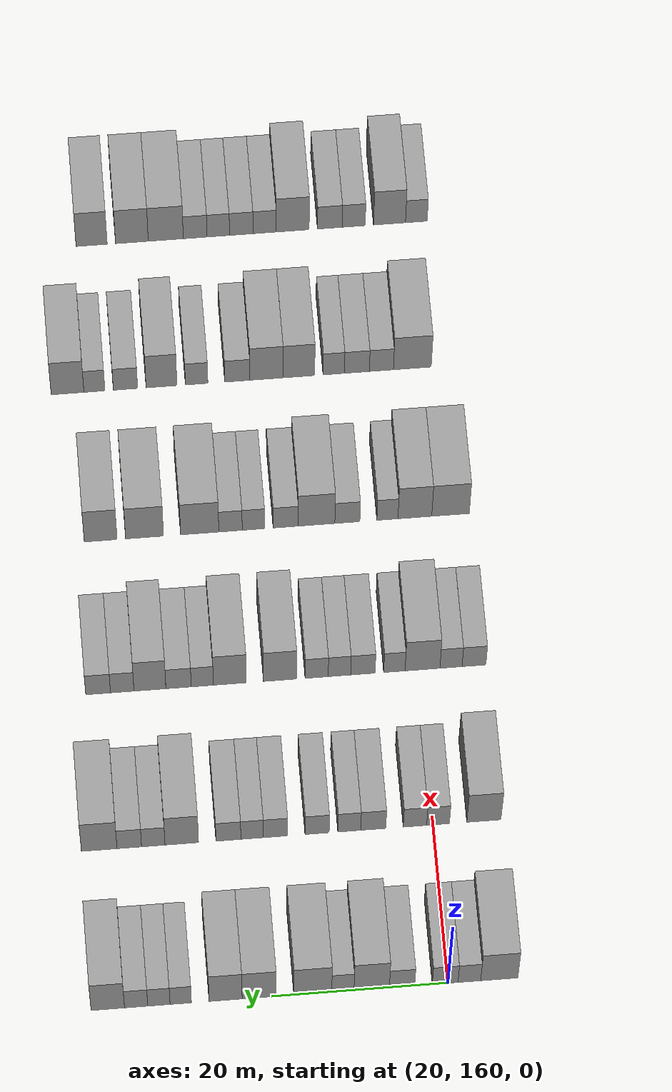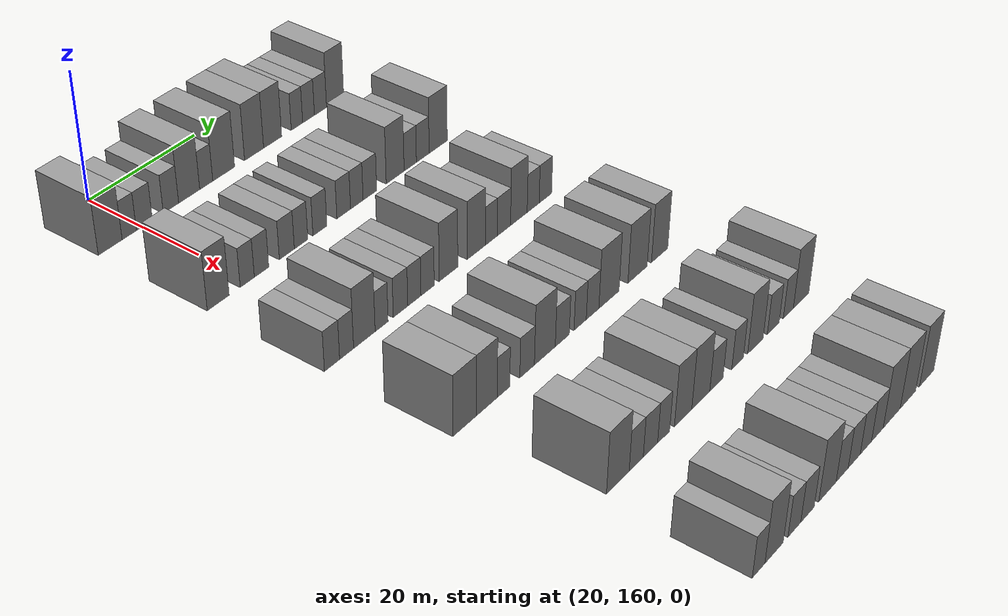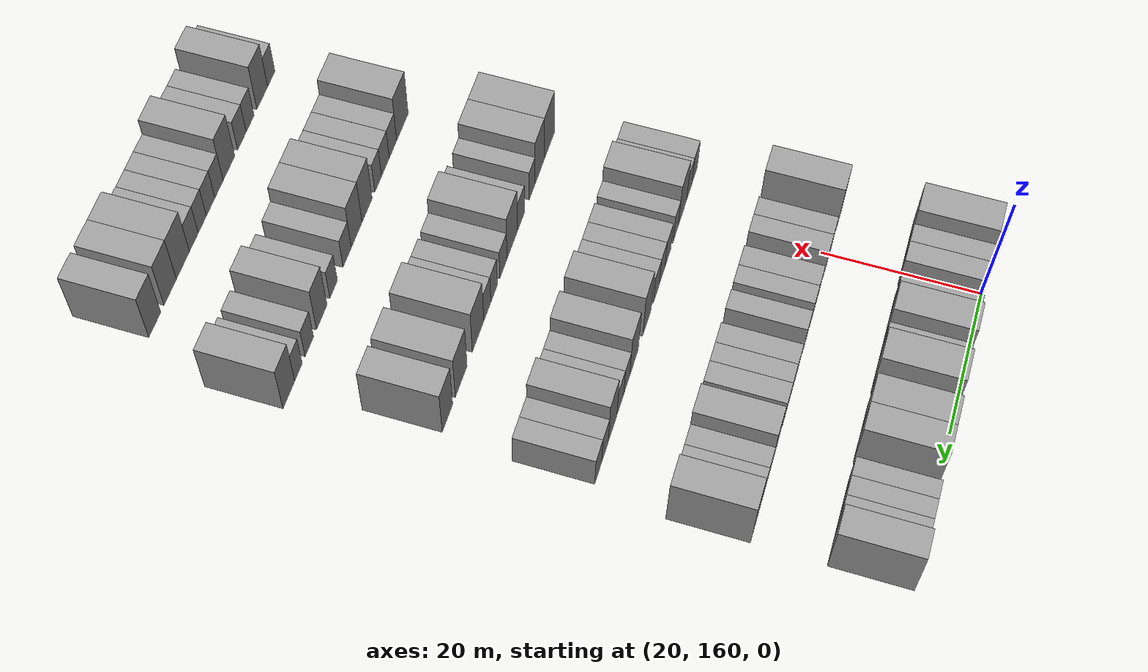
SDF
<sdf version="1.6">
 <world name="default">
  <model name="building_129">
   <static>1</static>
   <pose>25.0000 154.2460 0 0.000000 0.000000 0.000000</pose>
   <link name="link">
    <pose>0 0 4.50 0 0 0</pose>
    <collision name="collision"><geometry><box><size>10.0000 4.2170 9.0000</size></box></geometry></collision>
    <visual name="visual">
     <cast_shadows>0</cast_shadows>
     <geometry><box><size>10.0000 4.2170 9.0000</size></box></geometry>
     <material>
      <script>
       <uri>model://grey_wall/materials/scripts</uri>
       <uri>model://grey_wall/materials/textures</uri>
       <name>vrc/grey_wall</name>
      </script>
     </material>
    </visual>
   </link>
  </model>
  <model name="building_130">
   <static>1</static>
   <pose>25.0000 157.6413 0 0.000000 0.000000 0.000000</pose>
   <link name="link">
    <pose>0 0 3.00 0 0 0</pose>
    <collision name="collision"><geometry><box><size>10.0000 2.5736 6.0000</size></box></geometry></collision>
    <visual name="visual">
     <cast_shadows>0</cast_shadows>
     <geometry><box><size>10.0000 2.5736 6.0000</size></box></geometry>
     <material>
      <script>
       <uri>model://grey_wall/materials/scripts</uri>
       <uri>model://grey_wall/materials/textures</uri>
       <name>vrc/grey_wall</name>
      </script>
     </material>
    </visual>
   </link>
  </model>
  <model name="building_131">
   <static>1</static>
   <pose>25.0000 160.3849 0 0.000000 0.000000 0.000000</pose>
   <link name="link">
    <pose>0 0 3.00 0 0 0</pose>
    <collision name="collision"><geometry><box><size>10.0000 2.9136 6.0000</size></box></geometry></collision>
    <visual name="visual">
     <cast_shadows>0</cast_shadows>
     <geometry><box><size>10.0000 2.9136 6.0000</size></box></geometry>
     <material>
      <script>
       <uri>model://grey_wall/materials/scripts</uri>
       <uri>model://grey_wall/materials/textures</uri>
       <name>vrc/grey_wall</name>
      </script>
     </material>
    </visual>
   </link>
  </model>
  <model name="building_132">
   <static>1</static>
   <pose>25.0000 165.2762 0 0.000000 0.000000 0.000000</pose>
   <link name="link">
    <pose>0 0 3.00 0 0 0</pose>
    <collision name="collision"><geometry><box><size>10.0000 2.8690 6.0000</size></box></geometry></collision>
    <visual name="visual">
     <cast_shadows>0</cast_shadows>
     <geometry><box><size>10.0000 2.8690 6.0000</size></box></geometry>
     <material>
      <script>
       <uri>model://grey_wall/materials/scripts</uri>
       <uri>model://grey_wall/materials/textures</uri>
       <name>vrc/grey_wall</name>
      </script>
     </material>
    </visual>
   </link>
  </model>
  <model name="building_133">
   <static>1</static>
   <pose>25.0000 168.7164 0 0.000000 0.000000 0.000000</pose>
   <link name="link">
    <pose>0 0 4.50 0 0 0</pose>
    <collision name="collision"><geometry><box><size>10.0000 4.0114 9.0000</size></box></geometry></collision>
    <visual name="visual">
     <cast_shadows>0</cast_shadows>
     <geometry><box><size>10.0000 4.0114 9.0000</size></box></geometry>
     <material>
      <script>
       <uri>model://grey_wall/materials/scripts</uri>
       <uri>model://grey_wall/materials/textures</uri>
       <name>vrc/grey_wall</name>
      </script>
     </material>
    </visual>
   </link>
  </model>
  <model name="building_134">
   <static>1</static>
   <pose>25.0000 171.9844 0 0.000000 0.000000 0.000000</pose>
   <link name="link">
    <pose>0 0 3.00 0 0 0</pose>
    <collision name="collision"><geometry><box><size>10.0000 2.5245 6.0000</size></box></geometry></collision>
    <visual name="visual">
     <cast_shadows>0</cast_shadows>
     <geometry><box><size>10.0000 2.5245 6.0000</size></box></geometry>
     <material>
      <script>
       <uri>model://grey_wall/materials/scripts</uri>
       <uri>model://grey_wall/materials/textures</uri>
       <name>vrc/grey_wall</name>
      </script>
     </material>
    </visual>
   </link>
  </model>
  <model name="building_135">
   <static>1</static>
   <pose>25.0000 175.3926 0 0.000000 0.000000 0.000000</pose>
   <link name="link">
    <pose>0 0 4.50 0 0 0</pose>
    <collision name="collision"><geometry><box><size>10.0000 4.2920 9.0000</size></box></geometry></collision>
    <visual name="visual">
     <cast_shadows>0</cast_shadows>
     <geometry><box><size>10.0000 4.2920 9.0000</size></box></geometry>
     <material>
      <script>
       <uri>model://grey_wall/materials/scripts</uri>
       <uri>model://grey_wall/materials/textures</uri>
       <name>vrc/grey_wall</name>
      </script>
     </material>
    </visual>
   </link>
  </model>
  <model name="building_136">
   <static>1</static>
   <pose>25.0000 181.4640 0 0.000000 0.000000 0.000000</pose>
   <link name="link">
    <pose>0 0 4.50 0 0 0</pose>
    <collision name="collision"><geometry><box><size>10.0000 3.8508 9.0000</size></box></geometry></collision>
    <visual name="visual">
     <cast_shadows>0</cast_shadows>
     <geometry><box><size>10.0000 3.8508 9.0000</size></box></geometry>
     <material>
      <script>
       <uri>model://grey_wall/materials/scripts</uri>
       <uri>model://grey_wall/materials/textures</uri>
       <name>vrc/grey_wall</name>
      </script>
     </material>
    </visual>
   </link>
  </model>
  <model name="building_137">
   <static>1</static>
   <pose>25.0000 185.2584 0 0.000000 0.000000 0.000000</pose>
   <link name="link">
    <pose>0 0 4.50 0 0 0</pose>
    <collision name="collision"><geometry><box><size>10.0000 3.7382 9.0000</size></box></geometry></collision>
    <visual name="visual">
     <cast_shadows>0</cast_shadows>
     <geometry><box><size>10.0000 3.7382 9.0000</size></box></geometry>
     <material>
      <script>
       <uri>model://grey_wall/materials/scripts</uri>
       <uri>model://grey_wall/materials/textures</uri>
       <name>vrc/grey_wall</name>
      </script>
     </material>
    </visual>
   </link>
  </model>
  <model name="building_138">
   <static>1</static>
   <pose>25.0000 190.3357 0 0.000000 0.000000 0.000000</pose>
   <link name="link">
    <pose>0 0 3.00 0 0 0</pose>
    <collision name="collision"><geometry><box><size>10.0000 2.4163 6.0000</size></box></geometry></collision>
    <visual name="visual">
     <cast_shadows>0</cast_shadows>
     <geometry><box><size>10.0000 2.4163 6.0000</size></box></geometry>
     <material>
      <script>
       <uri>model://grey_wall/materials/scripts</uri>
       <uri>model://grey_wall/materials/textures</uri>
       <name>vrc/grey_wall</name>
      </script>
     </material>
    </visual>
   </link>
  </model>
  <model name="building_139">
   <static>1</static>
   <pose>25.0000 192.8050 0 0.000000 0.000000 0.000000</pose>
   <link name="link">
    <pose>0 0 3.00 0 0 0</pose>
    <collision name="collision"><geometry><box><size>10.0000 2.5221 6.0000</size></box></geometry></collision>
    <visual name="visual">
     <cast_shadows>0</cast_shadows>
     <geometry><box><size>10.0000 2.5221 6.0000</size></box></geometry>
     <material>
      <script>
       <uri>model://grey_wall/materials/scripts</uri>
       <uri>model://grey_wall/materials/textures</uri>
       <name>vrc/grey_wall</name>
      </script>
     </material>
    </visual>
   </link>
  </model>
  <model name="building_140">
   <static>1</static>
   <pose>25.0000 195.3795 0 0.000000 0.000000 0.000000</pose>
   <link name="link">
    <pose>0 0 3.00 0 0 0</pose>
    <collision name="collision"><geometry><box><size>10.0000 2.6270 6.0000</size></box></geometry></collision>
    <visual name="visual">
     <cast_shadows>0</cast_shadows>
     <geometry><box><size>10.0000 2.6270 6.0000</size></box></geometry>
     <material>
      <script>
       <uri>model://grey_wall/materials/scripts</uri>
       <uri>model://grey_wall/materials/textures</uri>
       <name>vrc/grey_wall</name>
      </script>
     </material>
    </visual>
   </link>
  </model>
  <model name="building_141">
   <static>1</static>
   <pose>25.0000 198.5831 0 0.000000 0.000000 0.000000</pose>
   <link name="link">
    <pose>0 0 4.50 0 0 0</pose>
    <collision name="collision"><geometry><box><size>10.0000 3.7802 9.0000</size></box></geometry></collision>
    <visual name="visual">
     <cast_shadows>0</cast_shadows>
     <geometry><box><size>10.0000 3.7802 9.0000</size></box></geometry>
     <material>
      <script>
       <uri>model://grey_wall/materials/scripts</uri>
       <uri>model://grey_wall/materials/textures</uri>
       <name>vrc/grey_wall</name>
      </script>
     </material>
    </visual>
   </link>
  </model>
  <model name="building_305">
   <static>1</static>
   <pose>44.0000 154.2042 0 0.000000 0.000000 0.000000</pose>
   <link name="link">
    <pose>0 0 4.50 0 0 0</pose>
    <collision name="collision"><geometry><box><size>10.0000 3.9146 9.0000</size></box></geometry></collision>
    <visual name="visual">
     <cast_shadows>0</cast_shadows>
     <geometry><box><size>10.0000 3.9146 9.0000</size></box></geometry>
     <material>
      <script>
       <uri>model://grey_wall/materials/scripts</uri>
       <uri>model://grey_wall/materials/textures</uri>
       <name>vrc/grey_wall</name>
      </script>
     </material>
    </visual>
   </link>
  </model>
  <model name="building_306">
   <static>1</static>
   <pose>44.0000 159.4656 0 0.000000 0.000000 0.000000</pose>
   <link name="link">
    <pose>0 0 3.00 0 0 0</pose>
    <collision name="collision"><geometry><box><size>10.0000 2.6083 6.0000</size></box></geometry></collision>
    <visual name="visual">
     <cast_shadows>0</cast_shadows>
     <geometry><box><size>10.0000 2.6083 6.0000</size></box></geometry>
     <material>
      <script>
       <uri>model://grey_wall/materials/scripts</uri>
       <uri>model://grey_wall/materials/textures</uri>
       <name>vrc/grey_wall</name>
      </script>
     </material>
    </visual>
   </link>
  </model>
  <model name="building_307">
   <static>1</static>
   <pose>44.0000 162.1146 0 0.000000 0.000000 0.000000</pose>
   <link name="link">
    <pose>0 0 3.00 0 0 0</pose>
    <collision name="collision"><geometry><box><size>10.0000 2.6896 6.0000</size></box></geometry></collision>
    <visual name="visual">
     <cast_shadows>0</cast_shadows>
     <geometry><box><size>10.0000 2.6896 6.0000</size></box></geometry>
     <material>
      <script>
       <uri>model://grey_wall/materials/scripts</uri>
       <uri>model://grey_wall/materials/textures</uri>
       <name>vrc/grey_wall</name>
      </script>
     </material>
    </visual>
   </link>
  </model>
  <model name="building_308">
   <static>1</static>
   <pose>44.0000 166.8958 0 0.000000 0.000000 0.000000</pose>
   <link name="link">
    <pose>0 0 3.00 0 0 0</pose>
    <collision name="collision"><geometry><box><size>10.0000 2.8729 6.0000</size></box></geometry></collision>
    <visual name="visual">
     <cast_shadows>0</cast_shadows>
     <geometry><box><size>10.0000 2.8729 6.0000</size></box></geometry>
     <material>
      <script>
       <uri>model://grey_wall/materials/scripts</uri>
       <uri>model://grey_wall/materials/textures</uri>
       <name>vrc/grey_wall</name>
      </script>
     </material>
    </visual>
   </link>
  </model>
  <model name="building_309">
   <static>1</static>
   <pose>44.0000 169.6414 0 0.000000 0.000000 0.000000</pose>
   <link name="link">
    <pose>0 0 3.00 0 0 0</pose>
    <collision name="collision"><geometry><box><size>10.0000 2.6182 6.0000</size></box></geometry></collision>
    <visual name="visual">
     <cast_shadows>0</cast_shadows>
     <geometry><box><size>10.0000 2.6182 6.0000</size></box></geometry>
     <material>
      <script>
       <uri>model://grey_wall/materials/scripts</uri>
       <uri>model://grey_wall/materials/textures</uri>
       <name>vrc/grey_wall</name>
      </script>
     </material>
    </visual>
   </link>
  </model>
  <model name="building_310">
   <static>1</static>
   <pose>44.0000 173.3304 0 0.000000 0.000000 0.000000</pose>
   <link name="link">
    <pose>0 0 3.00 0 0 0</pose>
    <collision name="collision"><geometry><box><size>10.0000 2.7597 6.0000</size></box></geometry></collision>
    <visual name="visual">
     <cast_shadows>0</cast_shadows>
     <geometry><box><size>10.0000 2.7597 6.0000</size></box></geometry>
     <material>
      <script>
       <uri>model://grey_wall/materials/scripts</uri>
       <uri>model://grey_wall/materials/textures</uri>
       <name>vrc/grey_wall</name>
      </script>
     </material>
    </visual>
   </link>
  </model>
  <model name="building_311">
   <static>1</static>
   <pose>44.0000 178.0972 0 0.000000 0.000000 0.000000</pose>
   <link name="link">
    <pose>0 0 3.00 0 0 0</pose>
    <collision name="collision"><geometry><box><size>10.0000 2.7738 6.0000</size></box></geometry></collision>
    <visual name="visual">
     <cast_shadows>0</cast_shadows>
     <geometry><box><size>10.0000 2.7738 6.0000</size></box></geometry>
     <material>
      <script>
       <uri>model://grey_wall/materials/scripts</uri>
       <uri>model://grey_wall/materials/textures</uri>
       <name>vrc/grey_wall</name>
      </script>
     </material>
    </visual>
   </link>
  </model>
  <model name="building_312">
   <static>1</static>
   <pose>44.0000 180.7755 0 0.000000 0.000000 0.000000</pose>
   <link name="link">
    <pose>0 0 3.00 0 0 0</pose>
    <collision name="collision"><geometry><box><size>10.0000 2.5829 6.0000</size></box></geometry></collision>
    <visual name="visual">
     <cast_shadows>0</cast_shadows>
     <geometry><box><size>10.0000 2.5829 6.0000</size></box></geometry>
     <material>
      <script>
       <uri>model://grey_wall/materials/scripts</uri>
       <uri>model://grey_wall/materials/textures</uri>
       <name>vrc/grey_wall</name>
      </script>
     </material>
    </visual>
   </link>
  </model>
  <model name="building_313">
   <static>1</static>
   <pose>44.0000 183.4873 0 0.000000 0.000000 0.000000</pose>
   <link name="link">
    <pose>0 0 3.00 0 0 0</pose>
    <collision name="collision"><geometry><box><size>10.0000 2.8407 6.0000</size></box></geometry></collision>
    <visual name="visual">
     <cast_shadows>0</cast_shadows>
     <geometry><box><size>10.0000 2.8407 6.0000</size></box></geometry>
     <material>
      <script>
       <uri>model://grey_wall/materials/scripts</uri>
       <uri>model://grey_wall/materials/textures</uri>
       <name>vrc/grey_wall</name>
      </script>
     </material>
    </visual>
   </link>
  </model>
  <model name="building_314">
   <static>1</static>
   <pose>44.0000 188.8247 0 0.000000 0.000000 0.000000</pose>
   <link name="link">
    <pose>0 0 4.50 0 0 0</pose>
    <collision name="collision"><geometry><box><size>10.0000 3.8340 9.0000</size></box></geometry></collision>
    <visual name="visual">
     <cast_shadows>0</cast_shadows>
     <geometry><box><size>10.0000 3.8340 9.0000</size></box></geometry>
     <material>
      <script>
       <uri>model://grey_wall/materials/scripts</uri>
       <uri>model://grey_wall/materials/textures</uri>
       <name>vrc/grey_wall</name>
      </script>
     </material>
    </visual>
   </link>
  </model>
  <model name="building_315">
   <static>1</static>
   <pose>44.0000 192.0811 0 0.000000 0.000000 0.000000</pose>
   <link name="link">
    <pose>0 0 3.00 0 0 0</pose>
    <collision name="collision"><geometry><box><size>10.0000 2.6788 6.0000</size></box></geometry></collision>
    <visual name="visual">
     <cast_shadows>0</cast_shadows>
     <geometry><box><size>10.0000 2.6788 6.0000</size></box></geometry>
     <material>
      <script>
       <uri>model://grey_wall/materials/scripts</uri>
       <uri>model://grey_wall/materials/textures</uri>
       <name>vrc/grey_wall</name>
      </script>
     </material>
    </visual>
   </link>
  </model>
  <model name="building_316">
   <static>1</static>
   <pose>44.0000 194.8253 0 0.000000 0.000000 0.000000</pose>
   <link name="link">
    <pose>0 0 3.00 0 0 0</pose>
    <collision name="collision"><geometry><box><size>10.0000 2.8096 6.0000</size></box></geometry></collision>
    <visual name="visual">
     <cast_shadows>0</cast_shadows>
     <geometry><box><size>10.0000 2.8096 6.0000</size></box></geometry>
     <material>
      <script>
       <uri>model://grey_wall/materials/scripts</uri>
       <uri>model://grey_wall/materials/textures</uri>
       <name>vrc/grey_wall</name>
      </script>
     </material>
    </visual>
   </link>
  </model>
  <model name="building_317">
   <static>1</static>
   <pose>44.0000 198.2638 0 0.000000 0.000000 0.000000</pose>
   <link name="link">
    <pose>0 0 4.50 0 0 0</pose>
    <collision name="collision"><geometry><box><size>10.0000 4.0675 9.0000</size></box></geometry></collision>
    <visual name="visual">
     <cast_shadows>0</cast_shadows>
     <geometry><box><size>10.0000 4.0675 9.0000</size></box></geometry>
     <material>
      <script>
       <uri>model://grey_wall/materials/scripts</uri>
       <uri>model://grey_wall/materials/textures</uri>
       <name>vrc/grey_wall</name>
      </script>
     </material>
    </visual>
   </link>
  </model>
  <model name="building_474">
   <static>1</static>
   <pose>63.0000 153.5752 0 0.000000 0.000000 0.000000</pose>
   <link name="link">
    <pose>0 0 3.00 0 0 0</pose>
    <collision name="collision"><geometry><box><size>10.0000 2.7637 6.0000</size></box></geometry></collision>
    <visual name="visual">
     <cast_shadows>0</cast_shadows>
     <geometry><box><size>10.0000 2.7637 6.0000</size></box></geometry>
     <material>
      <script>
       <uri>model://grey_wall/materials/scripts</uri>
       <uri>model://grey_wall/materials/textures</uri>
       <name>vrc/grey_wall</name>
      </script>
     </material>
    </visual>
   </link>
  </model>
  <model name="building_475">
   <static>1</static>
   <pose>63.0000 156.2429 0 0.000000 0.000000 0.000000</pose>
   <link name="link">
    <pose>0 0 3.00 0 0 0</pose>
    <collision name="collision"><geometry><box><size>10.0000 2.5715 6.0000</size></box></geometry></collision>
    <visual name="visual">
     <cast_shadows>0</cast_shadows>
     <geometry><box><size>10.0000 2.5715 6.0000</size></box></geometry>
     <material>
      <script>
       <uri>model://grey_wall/materials/scripts</uri>
       <uri>model://grey_wall/materials/textures</uri>
       <name>vrc/grey_wall</name>
      </script>
     </material>
    </visual>
   </link>
  </model>
  <model name="building_476">
   <static>1</static>
   <pose>63.0000 159.5492 0 0.000000 0.000000 0.000000</pose>
   <link name="link">
    <pose>0 0 4.50 0 0 0</pose>
    <collision name="collision"><geometry><box><size>10.0000 4.0411 9.0000</size></box></geometry></collision>
    <visual name="visual">
     <cast_shadows>0</cast_shadows>
     <geometry><box><size>10.0000 4.0411 9.0000</size></box></geometry>
     <material>
      <script>
       <uri>model://grey_wall/materials/scripts</uri>
       <uri>model://grey_wall/materials/textures</uri>
       <name>vrc/grey_wall</name>
      </script>
     </material>
    </visual>
   </link>
  </model>
  <model name="building_477">
   <static>1</static>
   <pose>63.0000 162.8063 0 0.000000 0.000000 0.000000</pose>
   <link name="link">
    <pose>0 0 3.00 0 0 0</pose>
    <collision name="collision"><geometry><box><size>10.0000 2.4732 6.0000</size></box></geometry></collision>
    <visual name="visual">
     <cast_shadows>0</cast_shadows>
     <geometry><box><size>10.0000 2.4732 6.0000</size></box></geometry>
     <material>
      <script>
       <uri>model://grey_wall/materials/scripts</uri>
       <uri>model://grey_wall/materials/textures</uri>
       <name>vrc/grey_wall</name>
      </script>
     </material>
    </visual>
   </link>
  </model>
  <model name="building_478">
   <static>1</static>
   <pose>63.0000 166.4580 0 0.000000 0.000000 0.000000</pose>
   <link name="link">
    <pose>0 0 3.00 0 0 0</pose>
    <collision name="collision"><geometry><box><size>10.0000 2.8301 6.0000</size></box></geometry></collision>
    <visual name="visual">
     <cast_shadows>0</cast_shadows>
     <geometry><box><size>10.0000 2.8301 6.0000</size></box></geometry>
     <material>
      <script>
       <uri>model://grey_wall/materials/scripts</uri>
       <uri>model://grey_wall/materials/textures</uri>
       <name>vrc/grey_wall</name>
      </script>
     </material>
    </visual>
   </link>
  </model>
  <model name="building_479">
   <static>1</static>
   <pose>63.0000 169.1736 0 0.000000 0.000000 0.000000</pose>
   <link name="link">
    <pose>0 0 3.00 0 0 0</pose>
    <collision name="collision"><geometry><box><size>10.0000 2.6010 6.0000</size></box></geometry></collision>
    <visual name="visual">
     <cast_shadows>0</cast_shadows>
     <geometry><box><size>10.0000 2.6010 6.0000</size></box></geometry>
     <material>
      <script>
       <uri>model://grey_wall/materials/scripts</uri>
       <uri>model://grey_wall/materials/textures</uri>
       <name>vrc/grey_wall</name>
      </script>
     </material>
    </visual>
   </link>
  </model>
  <model name="building_480">
   <static>1</static>
   <pose>63.0000 171.8097 0 0.000000 0.000000 0.000000</pose>
   <link name="link">
    <pose>0 0 3.00 0 0 0</pose>
    <collision name="collision"><geometry><box><size>10.0000 2.6711 6.0000</size></box></geometry></collision>
    <visual name="visual">
     <cast_shadows>0</cast_shadows>
     <geometry><box><size>10.0000 2.6711 6.0000</size></box></geometry>
     <material>
      <script>
       <uri>model://grey_wall/materials/scripts</uri>
       <uri>model://grey_wall/materials/textures</uri>
       <name>vrc/grey_wall</name>
      </script>
     </material>
    </visual>
   </link>
  </model>
  <model name="building_481">
   <static>1</static>
   <pose>63.0000 176.0574 0 0.000000 0.000000 0.000000</pose>
   <link name="link">
    <pose>0 0 4.50 0 0 0</pose>
    <collision name="collision"><geometry><box><size>10.0000 3.8244 9.0000</size></box></geometry></collision>
    <visual name="visual">
     <cast_shadows>0</cast_shadows>
     <geometry><box><size>10.0000 3.8244 9.0000</size></box></geometry>
     <material>
      <script>
       <uri>model://grey_wall/materials/scripts</uri>
       <uri>model://grey_wall/materials/textures</uri>
       <name>vrc/grey_wall</name>
      </script>
     </material>
    </visual>
   </link>
  </model>
  <model name="building_482">
   <static>1</static>
   <pose>63.0000 181.8731 0 0.000000 0.000000 0.000000</pose>
   <link name="link">
    <pose>0 0 4.50 0 0 0</pose>
    <collision name="collision"><geometry><box><size>10.0000 3.8069 9.0000</size></box></geometry></collision>
    <visual name="visual">
     <cast_shadows>0</cast_shadows>
     <geometry><box><size>10.0000 3.8069 9.0000</size></box></geometry>
     <material>
      <script>
       <uri>model://grey_wall/materials/scripts</uri>
       <uri>model://grey_wall/materials/textures</uri>
       <name>vrc/grey_wall</name>
      </script>
     </material>
    </visual>
   </link>
  </model>
  <model name="building_483">
   <static>1</static>
   <pose>63.0000 185.0580 0 0.000000 0.000000 0.000000</pose>
   <link name="link">
    <pose>0 0 3.00 0 0 0</pose>
    <collision name="collision"><geometry><box><size>10.0000 2.5628 6.0000</size></box></geometry></collision>
    <visual name="visual">
     <cast_shadows>0</cast_shadows>
     <geometry><box><size>10.0000 2.5628 6.0000</size></box></geometry>
     <material>
      <script>
       <uri>model://grey_wall/materials/scripts</uri>
       <uri>model://grey_wall/materials/textures</uri>
       <name>vrc/grey_wall</name>
      </script>
     </material>
    </visual>
   </link>
  </model>
  <model name="building_484">
   <static>1</static>
   <pose>63.0000 187.8026 0 0.000000 0.000000 0.000000</pose>
   <link name="link">
    <pose>0 0 3.00 0 0 0</pose>
    <collision name="collision"><geometry><box><size>10.0000 2.9264 6.0000</size></box></geometry></collision>
    <visual name="visual">
     <cast_shadows>0</cast_shadows>
     <geometry><box><size>10.0000 2.9264 6.0000</size></box></geometry>
     <material>
      <script>
       <uri>model://grey_wall/materials/scripts</uri>
       <uri>model://grey_wall/materials/textures</uri>
       <name>vrc/grey_wall</name>
      </script>
     </material>
    </visual>
   </link>
  </model>
  <model name="building_485">
   <static>1</static>
   <pose>63.0000 191.1092 0 0.000000 0.000000 0.000000</pose>
   <link name="link">
    <pose>0 0 4.50 0 0 0</pose>
    <collision name="collision"><geometry><box><size>10.0000 3.6867 9.0000</size></box></geometry></collision>
    <visual name="visual">
     <cast_shadows>0</cast_shadows>
     <geometry><box><size>10.0000 3.6867 9.0000</size></box></geometry>
     <material>
      <script>
       <uri>model://grey_wall/materials/scripts</uri>
       <uri>model://grey_wall/materials/textures</uri>
       <name>vrc/grey_wall</name>
      </script>
     </material>
    </visual>
   </link>
  </model>
  <model name="building_486">
   <static>1</static>
   <pose>63.0000 194.3098 0 0.000000 0.000000 0.000000</pose>
   <link name="link">
    <pose>0 0 3.00 0 0 0</pose>
    <collision name="collision"><geometry><box><size>10.0000 2.7145 6.0000</size></box></geometry></collision>
    <visual name="visual">
     <cast_shadows>0</cast_shadows>
     <geometry><box><size>10.0000 2.7145 6.0000</size></box></geometry>
     <material>
      <script>
       <uri>model://grey_wall/materials/scripts</uri>
       <uri>model://grey_wall/materials/textures</uri>
       <name>vrc/grey_wall</name>
      </script>
     </material>
    </visual>
   </link>
  </model>
  <model name="building_487">
   <static>1</static>
   <pose>63.0000 197.0973 0 0.000000 0.000000 0.000000</pose>
   <link name="link">
    <pose>0 0 3.00 0 0 0</pose>
    <collision name="collision"><geometry><box><size>10.0000 2.8607 6.0000</size></box></geometry></collision>
    <visual name="visual">
     <cast_shadows>0</cast_shadows>
     <geometry><box><size>10.0000 2.8607 6.0000</size></box></geometry>
     <material>
      <script>
       <uri>model://grey_wall/materials/scripts</uri>
       <uri>model://grey_wall/materials/textures</uri>
       <name>vrc/grey_wall</name>
      </script>
     </material>
    </visual>
   </link>
  </model>
  <model name="building_652">
   <static>1</static>
   <pose>82.0000 154.5561 0 0.000000 0.000000 0.000000</pose>
   <link name="link">
    <pose>0 0 4.50 0 0 0</pose>
    <collision name="collision"><geometry><box><size>10.0000 4.3965 9.0000</size></box></geometry></collision>
    <visual name="visual">
     <cast_shadows>0</cast_shadows>
     <geometry><box><size>10.0000 4.3965 9.0000</size></box></geometry>
     <material>
      <script>
       <uri>model://grey_wall/materials/scripts</uri>
       <uri>model://grey_wall/materials/textures</uri>
       <name>vrc/grey_wall</name>
      </script>
     </material>
    </visual>
   </link>
  </model>
  <model name="building_653">
   <static>1</static>
   <pose>82.0000 158.7388 0 0.000000 0.000000 0.000000</pose>
   <link name="link">
    <pose>0 0 4.50 0 0 0</pose>
    <collision name="collision"><geometry><box><size>10.0000 3.9690 9.0000</size></box></geometry></collision>
    <visual name="visual">
     <cast_shadows>0</cast_shadows>
     <geometry><box><size>10.0000 3.9690 9.0000</size></box></geometry>
     <material>
      <script>
       <uri>model://grey_wall/materials/scripts</uri>
       <uri>model://grey_wall/materials/textures</uri>
       <name>vrc/grey_wall</name>
      </script>
     </material>
    </visual>
   </link>
  </model>
  <model name="building_654">
   <static>1</static>
   <pose>82.0000 161.9550 0 0.000000 0.000000 0.000000</pose>
   <link name="link">
    <pose>0 0 3.00 0 0 0</pose>
    <collision name="collision"><geometry><box><size>10.0000 2.4633 6.0000</size></box></geometry></collision>
    <visual name="visual">
     <cast_shadows>0</cast_shadows>
     <geometry><box><size>10.0000 2.4633 6.0000</size></box></geometry>
     <material>
      <script>
       <uri>model://grey_wall/materials/scripts</uri>
       <uri>model://grey_wall/materials/textures</uri>
       <name>vrc/grey_wall</name>
      </script>
     </material>
    </visual>
   </link>
  </model>
  <model name="building_655">
   <static>1</static>
   <pose>82.0000 166.6512 0 0.000000 0.000000 0.000000</pose>
   <link name="link">
    <pose>0 0 3.00 0 0 0</pose>
    <collision name="collision"><geometry><box><size>10.0000 2.9291 6.0000</size></box></geometry></collision>
    <visual name="visual">
     <cast_shadows>0</cast_shadows>
     <geometry><box><size>10.0000 2.9291 6.0000</size></box></geometry>
     <material>
      <script>
       <uri>model://grey_wall/materials/scripts</uri>
       <uri>model://grey_wall/materials/textures</uri>
       <name>vrc/grey_wall</name>
      </script>
     </material>
    </visual>
   </link>
  </model>
  <model name="building_656">
   <static>1</static>
   <pose>82.0000 170.2599 0 0.000000 0.000000 0.000000</pose>
   <link name="link">
    <pose>0 0 4.50 0 0 0</pose>
    <collision name="collision"><geometry><box><size>10.0000 4.2883 9.0000</size></box></geometry></collision>
    <visual name="visual">
     <cast_shadows>0</cast_shadows>
     <geometry><box><size>10.0000 4.2883 9.0000</size></box></geometry>
     <material>
      <script>
       <uri>model://grey_wall/materials/scripts</uri>
       <uri>model://grey_wall/materials/textures</uri>
       <name>vrc/grey_wall</name>
      </script>
     </material>
    </visual>
   </link>
  </model>
  <model name="building_657">
   <static>1</static>
   <pose>82.0000 173.8707 0 0.000000 0.000000 0.000000</pose>
   <link name="link">
    <pose>0 0 3.00 0 0 0</pose>
    <collision name="collision"><geometry><box><size>10.0000 2.9333 6.0000</size></box></geometry></collision>
    <visual name="visual">
     <cast_shadows>0</cast_shadows>
     <geometry><box><size>10.0000 2.9333 6.0000</size></box></geometry>
     <material>
      <script>
       <uri>model://grey_wall/materials/scripts</uri>
       <uri>model://grey_wall/materials/textures</uri>
       <name>vrc/grey_wall</name>
      </script>
     </material>
    </visual>
   </link>
  </model>
  <model name="building_658">
   <static>1</static>
   <pose>82.0000 177.6490 0 0.000000 0.000000 0.000000</pose>
   <link name="link">
    <pose>0 0 3.00 0 0 0</pose>
    <collision name="collision"><geometry><box><size>10.0000 2.6233 6.0000</size></box></geometry></collision>
    <visual name="visual">
     <cast_shadows>0</cast_shadows>
     <geometry><box><size>10.0000 2.6233 6.0000</size></box></geometry>
     <material>
      <script>
       <uri>model://grey_wall/materials/scripts</uri>
       <uri>model://grey_wall/materials/textures</uri>
       <name>vrc/grey_wall</name>
      </script>
     </material>
    </visual>
   </link>
  </model>
  <model name="building_659">
   <static>1</static>
   <pose>82.0000 180.3321 0 0.000000 0.000000 0.000000</pose>
   <link name="link">
    <pose>0 0 3.00 0 0 0</pose>
    <collision name="collision"><geometry><box><size>10.0000 2.7430 6.0000</size></box></geometry></collision>
    <visual name="visual">
     <cast_shadows>0</cast_shadows>
     <geometry><box><size>10.0000 2.7430 6.0000</size></box></geometry>
     <material>
      <script>
       <uri>model://grey_wall/materials/scripts</uri>
       <uri>model://grey_wall/materials/textures</uri>
       <name>vrc/grey_wall</name>
      </script>
     </material>
    </visual>
   </link>
  </model>
  <model name="building_660">
   <static>1</static>
   <pose>82.0000 183.9355 0 0.000000 0.000000 0.000000</pose>
   <link name="link">
    <pose>0 0 4.50 0 0 0</pose>
    <collision name="collision"><geometry><box><size>10.0000 4.4637 9.0000</size></box></geometry></collision>
    <visual name="visual">
     <cast_shadows>0</cast_shadows>
     <geometry><box><size>10.0000 4.4637 9.0000</size></box></geometry>
     <material>
      <script>
       <uri>model://grey_wall/materials/scripts</uri>
       <uri>model://grey_wall/materials/textures</uri>
       <name>vrc/grey_wall</name>
      </script>
     </material>
    </visual>
   </link>
  </model>
  <model name="building_661">
   <static>1</static>
   <pose>82.0000 190.3796 0 0.000000 0.000000 0.000000</pose>
   <link name="link">
    <pose>0 0 4.50 0 0 0</pose>
    <collision name="collision"><geometry><box><size>10.0000 4.4247 9.0000</size></box></geometry></collision>
    <visual name="visual">
     <cast_shadows>0</cast_shadows>
     <geometry><box><size>10.0000 4.4247 9.0000</size></box></geometry>
     <material>
      <script>
       <uri>model://grey_wall/materials/scripts</uri>
       <uri>model://grey_wall/materials/textures</uri>
       <name>vrc/grey_wall</name>
      </script>
     </material>
    </visual>
   </link>
  </model>
  <model name="building_662">
   <static>1</static>
   <pose>82.0000 195.5095 0 0.000000 0.000000 0.000000</pose>
   <link name="link">
    <pose>0 0 4.50 0 0 0</pose>
    <collision name="collision"><geometry><box><size>10.0000 3.8349 9.0000</size></box></geometry></collision>
    <visual name="visual">
     <cast_shadows>0</cast_shadows>
     <geometry><box><size>10.0000 3.8349 9.0000</size></box></geometry>
     <material>
      <script>
       <uri>model://grey_wall/materials/scripts</uri>
       <uri>model://grey_wall/materials/textures</uri>
       <name>vrc/grey_wall</name>
      </script>
     </material>
    </visual>
   </link>
  </model>
  <model name="building_828">
   <static>1</static>
   <pose>101.0000 157.3459 0 0.000000 0.000000 0.000000</pose>
   <link name="link">
    <pose>0 0 4.50 0 0 0</pose>
    <collision name="collision"><geometry><box><size>10.0000 4.4759 9.0000</size></box></geometry></collision>
    <visual name="visual">
     <cast_shadows>0</cast_shadows>
     <geometry><box><size>10.0000 4.4759 9.0000</size></box></geometry>
     <material>
      <script>
       <uri>model://grey_wall/materials/scripts</uri>
       <uri>model://grey_wall/materials/textures</uri>
       <name>vrc/grey_wall</name>
      </script>
     </material>
    </visual>
   </link>
  </model>
  <model name="building_829">
   <static>1</static>
   <pose>101.0000 161.0103 0 0.000000 0.000000 0.000000</pose>
   <link name="link">
    <pose>0 0 3.00 0 0 0</pose>
    <collision name="collision"><geometry><box><size>10.0000 2.8531 6.0000</size></box></geometry></collision>
    <visual name="visual">
     <cast_shadows>0</cast_shadows>
     <geometry><box><size>10.0000 2.8531 6.0000</size></box></geometry>
     <material>
      <script>
       <uri>model://grey_wall/materials/scripts</uri>
       <uri>model://grey_wall/materials/textures</uri>
       <name>vrc/grey_wall</name>
      </script>
     </material>
    </visual>
   </link>
  </model>
  <model name="building_830">
   <static>1</static>
   <pose>101.0000 163.9146 0 0.000000 0.000000 0.000000</pose>
   <link name="link">
    <pose>0 0 3.00 0 0 0</pose>
    <collision name="collision"><geometry><box><size>10.0000 2.9554 6.0000</size></box></geometry></collision>
    <visual name="visual">
     <cast_shadows>0</cast_shadows>
     <geometry><box><size>10.0000 2.9554 6.0000</size></box></geometry>
     <material>
      <script>
       <uri>model://grey_wall/materials/scripts</uri>
       <uri>model://grey_wall/materials/textures</uri>
       <name>vrc/grey_wall</name>
      </script>
     </material>
    </visual>
   </link>
  </model>
  <model name="building_831">
   <static>1</static>
   <pose>101.0000 166.6531 0 0.000000 0.000000 0.000000</pose>
   <link name="link">
    <pose>0 0 3.00 0 0 0</pose>
    <collision name="collision"><geometry><box><size>10.0000 2.5217 6.0000</size></box></geometry></collision>
    <visual name="visual">
     <cast_shadows>0</cast_shadows>
     <geometry><box><size>10.0000 2.5217 6.0000</size></box></geometry>
     <material>
      <script>
       <uri>model://grey_wall/materials/scripts</uri>
       <uri>model://grey_wall/materials/textures</uri>
       <name>vrc/grey_wall</name>
      </script>
     </material>
    </visual>
   </link>
  </model>
  <model name="building_832">
   <static>1</static>
   <pose>101.0000 170.7813 0 0.000000 0.000000 0.000000</pose>
   <link name="link">
    <pose>0 0 4.50 0 0 0</pose>
    <collision name="collision"><geometry><box><size>10.0000 3.7348 9.0000</size></box></geometry></collision>
    <visual name="visual">
     <cast_shadows>0</cast_shadows>
     <geometry><box><size>10.0000 3.7348 9.0000</size></box></geometry>
     <material>
      <script>
       <uri>model://grey_wall/materials/scripts</uri>
       <uri>model://grey_wall/materials/textures</uri>
       <name>vrc/grey_wall</name>
      </script>
     </material>
    </visual>
   </link>
  </model>
  <model name="building_833">
   <static>1</static>
   <pose>101.0000 174.6163 0 0.000000 0.000000 0.000000</pose>
   <link name="link">
    <pose>0 0 4.50 0 0 0</pose>
    <collision name="collision"><geometry><box><size>10.0000 3.9351 9.0000</size></box></geometry></collision>
    <visual name="visual">
     <cast_shadows>0</cast_shadows>
     <geometry><box><size>10.0000 3.9351 9.0000</size></box></geometry>
     <material>
      <script>
       <uri>model://grey_wall/materials/scripts</uri>
       <uri>model://grey_wall/materials/textures</uri>
       <name>vrc/grey_wall</name>
      </script>
     </material>
    </visual>
   </link>
  </model>
  <model name="building_834">
   <static>1</static>
   <pose>101.0000 178.0666 0 0.000000 0.000000 0.000000</pose>
   <link name="link">
    <pose>0 0 3.00 0 0 0</pose>
    <collision name="collision"><geometry><box><size>10.0000 2.9654 6.0000</size></box></geometry></collision>
    <visual name="visual">
     <cast_shadows>0</cast_shadows>
     <geometry><box><size>10.0000 2.9654 6.0000</size></box></geometry>
     <material>
      <script>
       <uri>model://grey_wall/materials/scripts</uri>
       <uri>model://grey_wall/materials/textures</uri>
       <name>vrc/grey_wall</name>
      </script>
     </material>
    </visual>
   </link>
  </model>
  <model name="building_835">
   <static>1</static>
   <pose>101.0000 182.8773 0 0.000000 0.000000 0.000000</pose>
   <link name="link">
    <pose>0 0 3.00 0 0 0</pose>
    <collision name="collision"><geometry><box><size>10.0000 2.6560 6.0000</size></box></geometry></collision>
    <visual name="visual">
     <cast_shadows>0</cast_shadows>
     <geometry><box><size>10.0000 2.6560 6.0000</size></box></geometry>
     <material>
      <script>
       <uri>model://grey_wall/materials/scripts</uri>
       <uri>model://grey_wall/materials/textures</uri>
       <name>vrc/grey_wall</name>
      </script>
     </material>
    </visual>
   </link>
  </model>
  <model name="building_836">
   <static>1</static>
   <pose>101.0000 187.0284 0 0.000000 0.000000 0.000000</pose>
   <link name="link">
    <pose>0 0 4.50 0 0 0</pose>
    <collision name="collision"><geometry><box><size>10.0000 3.6461 9.0000</size></box></geometry></collision>
    <visual name="visual">
     <cast_shadows>0</cast_shadows>
     <geometry><box><size>10.0000 3.6461 9.0000</size></box></geometry>
     <material>
      <script>
       <uri>model://grey_wall/materials/scripts</uri>
       <uri>model://grey_wall/materials/textures</uri>
       <name>vrc/grey_wall</name>
      </script>
     </material>
    </visual>
   </link>
  </model>
  <model name="building_837">
   <static>1</static>
   <pose>101.0000 191.2860 0 0.000000 0.000000 0.000000</pose>
   <link name="link">
    <pose>0 0 3.00 0 0 0</pose>
    <collision name="collision"><geometry><box><size>10.0000 2.8691 6.0000</size></box></geometry></collision>
    <visual name="visual">
     <cast_shadows>0</cast_shadows>
     <geometry><box><size>10.0000 2.8691 6.0000</size></box></geometry>
     <material>
      <script>
       <uri>model://grey_wall/materials/scripts</uri>
       <uri>model://grey_wall/materials/textures</uri>
       <name>vrc/grey_wall</name>
      </script>
     </material>
    </visual>
   </link>
  </model>
  <model name="building_838">
   <static>1</static>
   <pose>101.0000 194.9580 0 0.000000 0.000000 0.000000</pose>
   <link name="link">
    <pose>0 0 3.00 0 0 0</pose>
    <collision name="collision"><geometry><box><size>10.0000 2.4750 6.0000</size></box></geometry></collision>
    <visual name="visual">
     <cast_shadows>0</cast_shadows>
     <geometry><box><size>10.0000 2.4750 6.0000</size></box></geometry>
     <material>
      <script>
       <uri>model://grey_wall/materials/scripts</uri>
       <uri>model://grey_wall/materials/textures</uri>
       <name>vrc/grey_wall</name>
      </script>
     </material>
    </visual>
   </link>
  </model>
  <model name="building_839">
   <static>1</static>
   <pose>101.0000 198.1276 0 0.000000 0.000000 0.000000</pose>
   <link name="link">
    <pose>0 0 4.50 0 0 0</pose>
    <collision name="collision"><geometry><box><size>10.0000 3.8642 9.0000</size></box></geometry></collision>
    <visual name="visual">
     <cast_shadows>0</cast_shadows>
     <geometry><box><size>10.0000 3.8642 9.0000</size></box></geometry>
     <material>
      <script>
       <uri>model://grey_wall/materials/scripts</uri>
       <uri>model://grey_wall/materials/textures</uri>
       <name>vrc/grey_wall</name>
      </script>
     </material>
    </visual>
   </link>
  </model>
  <model name="building_1002">
   <static>1</static>
   <pose>120.0000 155.1734 0 0.000000 0.000000 0.000000</pose>
   <link name="link">
    <pose>0 0 3.00 0 0 0</pose>
    <collision name="collision"><geometry><box><size>10.0000 2.6011 6.0000</size></box></geometry></collision>
    <visual name="visual">
     <cast_shadows>0</cast_shadows>
     <geometry><box><size>10.0000 2.6011 6.0000</size></box></geometry>
     <material>
      <script>
       <uri>model://grey_wall/materials/scripts</uri>
       <uri>model://grey_wall/materials/textures</uri>
       <name>vrc/grey_wall</name>
      </script>
     </material>
    </visual>
   </link>
  </model>
  <model name="building_1003">
   <static>1</static>
   <pose>120.0000 158.3869 0 0.000000 0.000000 0.000000</pose>
   <link name="link">
    <pose>0 0 4.50 0 0 0</pose>
    <collision name="collision"><geometry><box><size>10.0000 3.8260 9.0000</size></box></geometry></collision>
    <visual name="visual">
     <cast_shadows>0</cast_shadows>
     <geometry><box><size>10.0000 3.8260 9.0000</size></box></geometry>
     <material>
      <script>
       <uri>model://grey_wall/materials/scripts</uri>
       <uri>model://grey_wall/materials/textures</uri>
       <name>vrc/grey_wall</name>
      </script>
     </material>
    </visual>
   </link>
  </model>
  <model name="building_1004">
   <static>1</static>
   <pose>120.0000 162.6808 0 0.000000 0.000000 0.000000</pose>
   <link name="link">
    <pose>0 0 3.00 0 0 0</pose>
    <collision name="collision"><geometry><box><size>10.0000 2.7618 6.0000</size></box></geometry></collision>
    <visual name="visual">
     <cast_shadows>0</cast_shadows>
     <geometry><box><size>10.0000 2.7618 6.0000</size></box></geometry>
     <material>
      <script>
       <uri>model://grey_wall/materials/scripts</uri>
       <uri>model://grey_wall/materials/textures</uri>
       <name>vrc/grey_wall</name>
      </script>
     </material>
    </visual>
   </link>
  </model>
  <model name="building_1005">
   <static>1</static>
   <pose>120.0000 165.5358 0 0.000000 0.000000 0.000000</pose>
   <link name="link">
    <pose>0 0 3.00 0 0 0</pose>
    <collision name="collision"><geometry><box><size>10.0000 2.9482 6.0000</size></box></geometry></collision>
    <visual name="visual">
     <cast_shadows>0</cast_shadows>
     <geometry><box><size>10.0000 2.9482 6.0000</size></box></geometry>
     <material>
      <script>
       <uri>model://grey_wall/materials/scripts</uri>
       <uri>model://grey_wall/materials/textures</uri>
       <name>vrc/grey_wall</name>
      </script>
     </material>
    </visual>
   </link>
  </model>
  <model name="building_1006">
   <static>1</static>
   <pose>120.0000 169.9748 0 0.000000 0.000000 0.000000</pose>
   <link name="link">
    <pose>0 0 4.50 0 0 0</pose>
    <collision name="collision"><geometry><box><size>10.0000 3.9298 9.0000</size></box></geometry></collision>
    <visual name="visual">
     <cast_shadows>0</cast_shadows>
     <geometry><box><size>10.0000 3.9298 9.0000</size></box></geometry>
     <material>
      <script>
       <uri>model://grey_wall/materials/scripts</uri>
       <uri>model://grey_wall/materials/textures</uri>
       <name>vrc/grey_wall</name>
      </script>
     </material>
    </visual>
   </link>
  </model>
  <model name="building_1007">
   <static>1</static>
   <pose>120.0000 173.3279 0 0.000000 0.000000 0.000000</pose>
   <link name="link">
    <pose>0 0 3.00 0 0 0</pose>
    <collision name="collision"><geometry><box><size>10.0000 2.7763 6.0000</size></box></geometry></collision>
    <visual name="visual">
     <cast_shadows>0</cast_shadows>
     <geometry><box><size>10.0000 2.7763 6.0000</size></box></geometry>
     <material>
      <script>
       <uri>model://grey_wall/materials/scripts</uri>
       <uri>model://grey_wall/materials/textures</uri>
       <name>vrc/grey_wall</name>
      </script>
     </material>
    </visual>
   </link>
  </model>
  <model name="building_1008">
   <static>1</static>
   <pose>120.0000 176.1249 0 0.000000 0.000000 0.000000</pose>
   <link name="link">
    <pose>0 0 3.00 0 0 0</pose>
    <collision name="collision"><geometry><box><size>10.0000 2.8179 6.0000</size></box></geometry></collision>
    <visual name="visual">
     <cast_shadows>0</cast_shadows>
     <geometry><box><size>10.0000 2.8179 6.0000</size></box></geometry>
     <material>
      <script>
       <uri>model://grey_wall/materials/scripts</uri>
       <uri>model://grey_wall/materials/textures</uri>
       <name>vrc/grey_wall</name>
      </script>
     </material>
    </visual>
   </link>
  </model>
  <model name="building_1009">
   <static>1</static>
   <pose>120.0000 178.8735 0 0.000000 0.000000 0.000000</pose>
   <link name="link">
    <pose>0 0 3.00 0 0 0</pose>
    <collision name="collision"><geometry><box><size>10.0000 2.6793 6.0000</size></box></geometry></collision>
    <visual name="visual">
     <cast_shadows>0</cast_shadows>
     <geometry><box><size>10.0000 2.6793 6.0000</size></box></geometry>
     <material>
      <script>
       <uri>model://grey_wall/materials/scripts</uri>
       <uri>model://grey_wall/materials/textures</uri>
       <name>vrc/grey_wall</name>
      </script>
     </material>
    </visual>
   </link>
  </model>
  <model name="building_1010">
   <static>1</static>
   <pose>120.0000 181.6359 0 0.000000 0.000000 0.000000</pose>
   <link name="link">
    <pose>0 0 3.00 0 0 0</pose>
    <collision name="collision"><geometry><box><size>10.0000 2.8455 6.0000</size></box></geometry></collision>
    <visual name="visual">
     <cast_shadows>0</cast_shadows>
     <geometry><box><size>10.0000 2.8455 6.0000</size></box></geometry>
     <material>
      <script>
       <uri>model://grey_wall/materials/scripts</uri>
       <uri>model://grey_wall/materials/textures</uri>
       <name>vrc/grey_wall</name>
      </script>
     </material>
    </visual>
   </link>
  </model>
  <model name="building_1011">
   <static>1</static>
   <pose>120.0000 185.1512 0 0.000000 0.000000 0.000000</pose>
   <link name="link">
    <pose>0 0 4.50 0 0 0</pose>
    <collision name="collision"><geometry><box><size>10.0000 4.1851 9.0000</size></box></geometry></collision>
    <visual name="visual">
     <cast_shadows>0</cast_shadows>
     <geometry><box><size>10.0000 4.1851 9.0000</size></box></geometry>
     <material>
      <script>
       <uri>model://grey_wall/materials/scripts</uri>
       <uri>model://grey_wall/materials/textures</uri>
       <name>vrc/grey_wall</name>
      </script>
     </material>
    </visual>
   </link>
  </model>
  <model name="building_1012">
   <static>1</static>
   <pose>120.0000 189.1959 0 0.000000 0.000000 0.000000</pose>
   <link name="link">
    <pose>0 0 4.50 0 0 0</pose>
    <collision name="collision"><geometry><box><size>10.0000 3.9042 9.0000</size></box></geometry></collision>
    <visual name="visual">
     <cast_shadows>0</cast_shadows>
     <geometry><box><size>10.0000 3.9042 9.0000</size></box></geometry>
     <material>
      <script>
       <uri>model://grey_wall/materials/scripts</uri>
       <uri>model://grey_wall/materials/textures</uri>
       <name>vrc/grey_wall</name>
      </script>
     </material>
    </visual>
   </link>
  </model>
  <model name="building_1013">
   <static>1</static>
   <pose>120.0000 194.0044 0 0.000000 0.000000 0.000000</pose>
   <link name="link">
    <pose>0 0 4.50 0 0 0</pose>
    <collision name="collision"><geometry><box><size>10.0000 3.7128 9.0000</size></box></geometry></collision>
    <visual name="visual">
     <cast_shadows>0</cast_shadows>
     <geometry><box><size>10.0000 3.7128 9.0000</size></box></geometry>
     <material>
      <script>
       <uri>model://grey_wall/materials/scripts</uri>
       <uri>model://grey_wall/materials/textures</uri>
       <name>vrc/grey_wall</name>
      </script>
     </material>
    </visual>
   </link>
  </model>
 </world>
</sdf>
